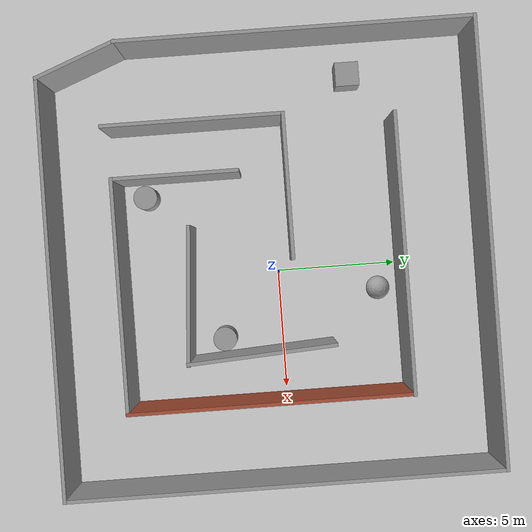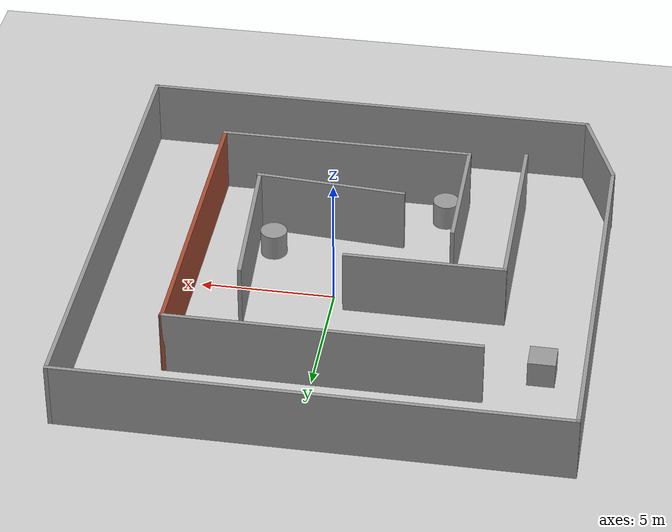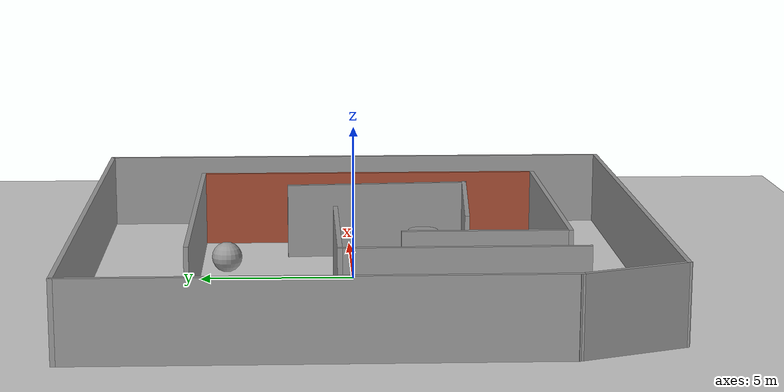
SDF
<sdf version="1.7">
 <world name="default">
  <light name="sun" type="directional">
   <pose>0 0 10 0 -0 0</pose>
   <diffuse>0.8 0.8 0.8 1</diffuse>
   <specular>0.2 0.2 0.2 1</specular>
   <attenuation>
    <range>1000</range>
    <constant>0.9</constant>
    <linear>0.01</linear>
    <quadratic>0.001</quadratic>
   </attenuation>
   <direction>-0.5 0.1 -0.9</direction>
   <spot><inner_angle>0</inner_angle><outer_angle>0</outer_angle><falloff>0</falloff></spot>
  </light>
  <model name="ground_plane">
   <static>1</static>
   <link name="link">
    <collision name="collision">
     <geometry><plane><normal>0 0 1</normal><size>100 100</size></plane></geometry>
     <surface>
      <contact><collide_bitmask>65535</collide_bitmask></contact>
      <friction><ode><mu>100</mu><mu2>50</mu2></ode></friction>
     </surface>
    </collision>
    <visual name="visual">
     <cast_shadows>0</cast_shadows>
     <geometry><plane><normal>0 0 1</normal><size>100 100</size></plane></geometry>
     <material>
      <script><uri>file://media/materials/scripts/gazebo.material</uri><name>Gazebo/Grey</name></script>
     </material>
    </visual>
   </link>
  </model>
  <gravity>0 0 -9.8</gravity>
  <magnetic_field>6e-06 2.3e-05 -4.2e-05</magnetic_field>
  <atmosphere type="adiabatic"/>
  <physics type="ode">
   <max_step_size>0.001</max_step_size>
   <real_time_factor>1</real_time_factor>
   <real_time_update_rate>1000</real_time_update_rate>
  </physics>
  <scene><ambient>0.4 0.4 0.4 1</ambient><background>0.7 0.7 0.7 1</background><shadows>1</shadows></scene>
  <spherical_coordinates>
   <surface_model>EARTH_WGS84</surface_model>
   <latitude_deg>0</latitude_deg>
   <longitude_deg>0</longitude_deg>
   <elevation>0</elevation>
   <heading_deg>0</heading_deg>
  </spherical_coordinates>
  <model name="demo01">
   <pose>-0.555666 -0.343146 0 0 -0 0</pose>
   <link name="Wall_11">
    <collision name="Wall_11_Collision">
     <geometry><box><size>18.5 0.15 2.5</size></box></geometry>
     <pose>0 0 1.25 0 -0 0</pose>
    </collision>
    <visual name="Wall_11_Visual">
     <pose>0 0 1.25 0 -0 0</pose>
     <geometry><box><size>18.5 0.15 2.5</size></box></geometry>
     <material>
      <script><uri>file://media/materials/scripts/gazebo.material</uri><name>Gazebo/Grey</name></script>
      <ambient>1 1 1 1</ambient>
     </material>
     <meta><layer>0</layer></meta>
    </visual>
    <pose>0.010924 8.94034 0 0 -0 3.14159</pose>
   </link>
   <link name="Wall_12">
    <collision name="Wall_12_Collision">
     <geometry><box><size>14.75 0.15 2.5</size></box></geometry>
     <pose>0 0 1.25 0 -0 0</pose>
    </collision>
    <visual name="Wall_12_Visual">
     <pose>0 0 1.25 0 -0 0</pose>
     <geometry><box><size>14.75 0.15 2.5</size></box></geometry>
     <material>
      <script><uri>file://media/materials/scripts/gazebo.material</uri><name>Gazebo/Grey</name></script>
      <ambient>1 1 1 1</ambient>
     </material>
     <meta><layer>0</layer></meta>
    </visual>
    <pose>-9.16408 1.64034 0 0 -0 -1.5708</pose>
   </link>
   <link name="Wall_13">
    <collision name="Wall_13_Collision">
     <geometry><box><size>3.60372 0.15 2.5</size></box></geometry>
     <pose>0 0 1.25 0 -0 0</pose>
    </collision>
    <visual name="Wall_13_Visual">
     <pose>0 0 1.25 0 -0 0</pose>
     <geometry><box><size>3.60372 0.15 2.5</size></box></geometry>
     <material>
      <script><uri>file://media/materials/scripts/gazebo.material</uri><name>Gazebo/Grey</name></script>
      <ambient>1 1 1 1</ambient>
     </material>
     <meta><layer>0</layer></meta>
    </visual>
    <pose>-8.53908 -7.26945 0 0 -0 -1.20046</pose>
   </link>
   <link name="Wall_17">
    <collision name="Wall_17_Collision">
     <geometry><box><size>11.5608 0.15 2.5</size></box></geometry>
     <pose>0 0 1.25 0 -0 0</pose>
    </collision>
    <visual name="Wall_17_Visual">
     <pose>0 0 1.25 0 -0 0</pose>
     <geometry><box><size>11.5608 0.15 2.5</size></box></geometry>
     <material>
      <script><uri>file://media/materials/scripts/gazebo.material</uri><name>Gazebo/Grey</name></script>
      <ambient>1 1 1 1</ambient>
     </material>
     <meta><layer>0</layer></meta>
    </visual>
    <pose>0.194324 5.4474 0 0 -0 0</pose>
   </link>
   <link name="Wall_18">
    <collision name="Wall_18_Collision">
     <geometry><box><size>11.75 0.15 2.5</size></box></geometry>
     <pose>0 0 1.25 0 -0 0</pose>
    </collision>
    <visual name="Wall_18_Visual">
     <pose>0 0 1.25 0 -0 0</pose>
     <geometry><box><size>11.75 0.15 2.5</size></box></geometry>
     <material>
      <script><uri>file://media/materials/scripts/gazebo.material</uri><name>Gazebo/Bricks</name></script>
      <ambient>1 1 1 1</ambient>
     </material>
     <meta><layer>0</layer></meta>
    </visual>
    <pose>5.86932 -0.352599 0 0 -0 -1.5708</pose>
   </link>
   <link name="Wall_2">
    <collision name="Wall_2_Collision">
     <geometry><box><size>5.72696 0.15 2.5</size></box></geometry>
     <pose>0 0 1.25 0 -0 0</pose>
    </collision>
    <visual name="Wall_2_Visual">
     <pose>0 0 1.25 0 -0 0</pose>
     <geometry><box><size>5.72696 0.15 2.5</size></box></geometry>
     <material>
      <script><uri>file://media/materials/scripts/gazebo.material</uri><name>Gazebo/Grey</name></script>
      <ambient>1 1 1 1</ambient>
     </material>
     <meta><layer>0</layer></meta>
    </visual>
    <pose>1.28339 -3.38 0 0 -0 -0.070963</pose>
   </link>
   <link name="Wall_21">
    <collision name="Wall_21_Collision">
     <geometry><box><size>9.65875 0.15 2.5</size></box></geometry>
     <pose>0 0 1.25 0 -0 0</pose>
    </collision>
    <visual name="Wall_21_Visual">
     <pose>0 0 1.25 0 -0 0</pose>
     <geometry><box><size>9.65875 0.15 2.5</size></box></geometry>
     <material>
      <script><uri>file://media/materials/scripts/gazebo.material</uri><name>Gazebo/Grey</name></script>
      <ambient>1 1 1 1</ambient>
     </material>
     <meta><layer>0</layer></meta>
    </visual>
    <pose>1.11495 -6.1526 0 0 -0 3.14159</pose>
   </link>
   <link name="Wall_22">
    <collision name="Wall_22_Collision">
     <geometry><box><size>5.25 0.15 2.5</size></box></geometry>
     <pose>0 0 1.25 0 -0 0</pose>
    </collision>
    <visual name="Wall_22_Visual">
     <pose>0 0 1.25 0 -0 0</pose>
     <geometry><box><size>5.25 0.15 2.5</size></box></geometry>
     <material>
      <script><uri>file://media/materials/scripts/gazebo.material</uri><name>Gazebo/Grey</name></script>
      <ambient>1 1 1 1</ambient>
     </material>
     <meta><layer>0</layer></meta>
    </visual>
    <pose>-3.63942 -3.6026 0 0 -0 1.5708</pose>
   </link>
   <link name="Wall_3">
    <collision name="Wall_3_Collision">
     <geometry><box><size>6.15653 0.15 2.5</size></box></geometry>
     <pose>0 0 1.25 0 -0 0</pose>
    </collision>
    <visual name="Wall_3_Visual">
     <pose>0 0 1.25 0 -0 0</pose>
     <geometry><box><size>6.15653 0.15 2.5</size></box></geometry>
     <material>
      <script><uri>file://media/materials/scripts/gazebo.material</uri><name>Gazebo/Grey</name></script>
      <ambient>1 1 1 1</ambient>
     </material>
     <meta><layer>0</layer></meta>
    </visual>
    <pose>3.85193 -0.579995 0 0 -0 1.6316</pose>
   </link>
   <link name="Wall_5">
    <collision name="Wall_5_Collision">
     <geometry><box><size>6 0.15 2.5</size></box></geometry>
     <pose>0 0 1.25 0 -0 0</pose>
    </collision>
    <visual name="Wall_5_Visual">
     <pose>0 0 1.25 0 -0 0</pose>
     <geometry><box><size>6 0.15 2.5</size></box></geometry>
     <material>
      <script><uri>file://media/materials/scripts/gazebo.material</uri><name>Gazebo/Grey</name></script>
      <ambient>1 1 1 1</ambient>
     </material>
     <meta><layer>0</layer></meta>
    </visual>
    <pose>-2.86969 0.945611 0 0 -0 3.14159</pose>
   </link>
   <link name="Wall_6">
    <collision name="Wall_6_Collision">
     <geometry><box><size>7.5 0.15 2.5</size></box></geometry>
     <pose>0 0 1.25 0 -0 0</pose>
    </collision>
    <visual name="Wall_6_Visual">
     <pose>0 0 1.25 0 -0 0</pose>
     <geometry><box><size>7.5 0.15 2.5</size></box></geometry>
     <material>
      <script><uri>file://media/materials/scripts/gazebo.material</uri><name>Gazebo/Grey</name></script>
      <ambient>1 1 1 1</ambient>
     </material>
     <meta><layer>0</layer></meta>
    </visual>
    <pose>-5.79469 -2.72939 0 0 -0 -1.5708</pose>
   </link>
   <link name="Wall_8">
    <collision name="Wall_8_Collision">
     <geometry><box><size>17.25 0.15 2.5</size></box></geometry>
     <pose>0 0 1.25 0 -0 0</pose>
    </collision>
    <visual name="Wall_8_Visual">
     <pose>0 0 1.25 0 -0 0</pose>
     <geometry><box><size>17.25 0.15 2.5</size></box></geometry>
     <material>
      <script><uri>file://media/materials/scripts/gazebo.material</uri><name>Gazebo/Grey</name></script>
      <ambient>1 1 1 1</ambient>
     </material>
     <meta><layer>0</layer></meta>
    </visual>
    <pose>0.635924 -8.90966 0 0 -0 -0.003558</pose>
   </link>
   <link name="Wall_9">
    <collision name="Wall_9_Collision">
     <geometry><box><size>18 0.15 2.5</size></box></geometry>
     <pose>0 0 1.25 0 -0 0</pose>
    </collision>
    <visual name="Wall_9_Visual">
     <pose>0 0 1.25 0 -0 0</pose>
     <geometry><box><size>18 0.15 2.5</size></box></geometry>
     <material>
      <script><uri>file://media/materials/scripts/gazebo.material</uri><name>Gazebo/Grey</name></script>
      <ambient>1 1 1 1</ambient>
     </material>
     <meta><layer>0</layer></meta>
    </visual>
    <pose>9.18592 0.015341 0 0 -0 1.5708</pose>
   </link>
   <static>1</static>
  </model>
  <model name="unit_sphere">
   <pose>1.01861 4.16958 0.5 0 -0 0</pose>
   <link name="link">
    <inertial>
     <mass>1</mass>
     <inertia><ixx>0.1</ixx><ixy>0</ixy><ixz>0</ixz><iyy>0.1</iyy><iyz>0</iyz><izz>0.1</izz></inertia>
    </inertial>
    <collision name="collision"><geometry><sphere><radius>0.5</radius></sphere></geometry></collision>
    <visual name="visual">
     <geometry><sphere><radius>0.5</radius></sphere></geometry>
     <material>
      <script><name>Gazebo/Grey</name><uri>file://media/materials/scripts/gazebo.material</uri></script>
     </material>
    </visual>
   </link>
  </model>
  <model name="unit_box">
   <pose>-8.07941 3.46162 0.499995 0 1e-05 0</pose>
   <link name="link">
    <inertial>
     <mass>1</mass>
     <inertia>
      <ixx>0.166667</ixx>
      <ixy>0</ixy>
      <ixz>0</ixz>
      <iyy>0.166667</iyy>
      <iyz>0</iyz>
      <izz>0.166667</izz>
     </inertia>
    </inertial>
    <collision name="collision"><geometry><box><size>1 1 1</size></box></geometry></collision>
    <visual name="visual">
     <geometry><box><size>1 1 1</size></box></geometry>
     <material>
      <script><name>Gazebo/Grey</name><uri>file://media/materials/scripts/gazebo.material</uri></script>
     </material>
    </visual>
   </link>
  </model>
  <model name="unit_cylinder">
   <pose>2.69848 -2.46215 0.499993 -3e-06 -4e-06 -0</pose>
   <link name="link">
    <inertial>
     <mass>1</mass>
     <inertia><ixx>0.145833</ixx><ixy>0</ixy><ixz>0</ixz><iyy>0.145833</iyy><iyz>0</iyz><izz>0.125</izz></inertia>
    </inertial>
    <collision name="collision">
     <geometry><cylinder><radius>0.5</radius><length>1</length></cylinder></geometry>
    </collision>
    <visual name="visual">
     <geometry><cylinder><radius>0.5</radius><length>1</length></cylinder></geometry>
     <material>
      <script><name>Gazebo/Grey</name><uri>file://media/materials/scripts/gazebo.material</uri></script>
     </material>
    </visual>
   </link>
  </model>
  <model name="unit_cylinder_0">
   <pose>-3.48396 -5.38955 0.499997 3e-06 4e-06 -0</pose>
   <link name="link">
    <inertial>
     <mass>1</mass>
     <inertia><ixx>0.145833</ixx><ixy>0</ixy><ixz>0</ixz><iyy>0.145833</iyy><iyz>0</iyz><izz>0.125</izz></inertia>
    </inertial>
    <collision name="collision">
     <geometry><cylinder><radius>0.5</radius><length>1</length></cylinder></geometry>
    </collision>
    <visual name="visual">
     <geometry><cylinder><radius>0.5</radius><length>1</length></cylinder></geometry>
     <material>
      <script><name>Gazebo/Grey</name><uri>file://media/materials/scripts/gazebo.material</uri></script>
     </material>
    </visual>
   </link>
  </model>
 </world>
</sdf>
